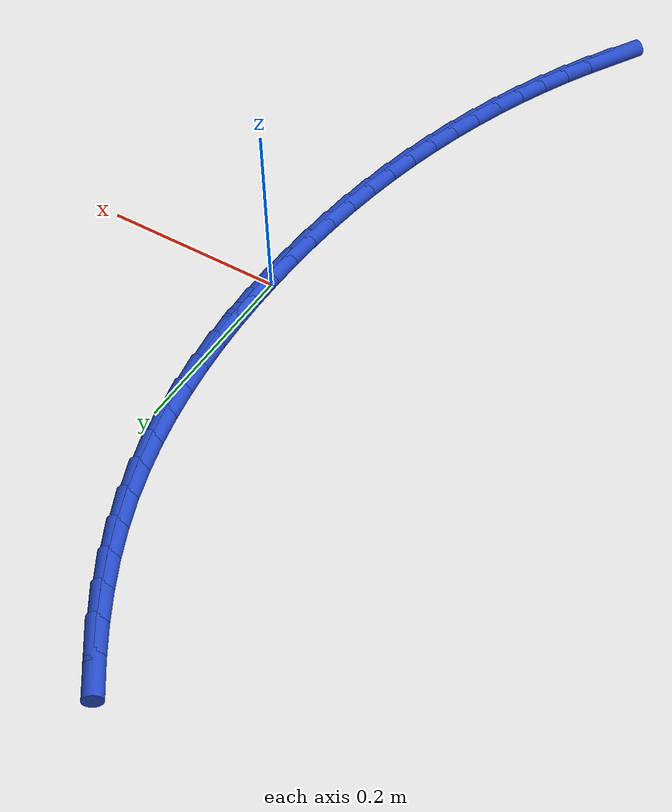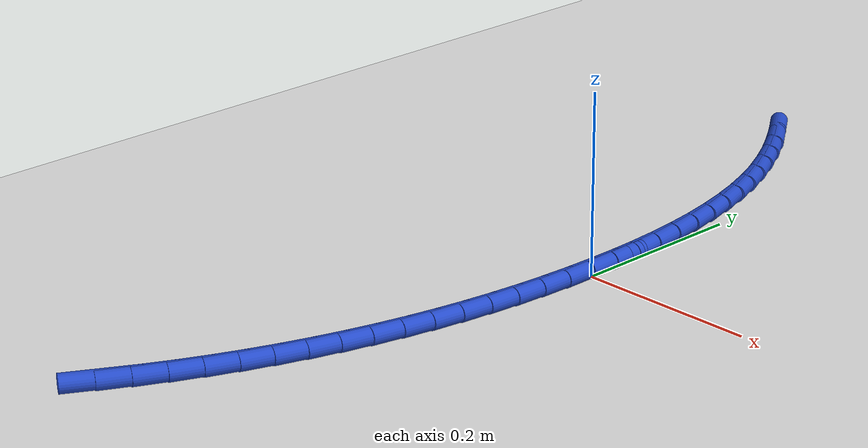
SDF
<sdf version="1.6">
 <world name="default">
  <model name="ground_plane">
   <static>1</static>
   <link name="link">
    <collision name="collision">
     <geometry><plane><normal>0 0 1</normal><size>100 100</size></plane></geometry>
     <surface><friction><ode><mu>100</mu><mu2>50</mu2></ode></friction></surface>
    </collision>
    <visual name="visual">
     <cast_shadows>0</cast_shadows>
     <geometry><plane><normal>0 0 1</normal><size>100 100</size></plane></geometry>
     <material>
      <script><uri>file://media/materials/scripts/gazebo.material</uri><name>Gazebo/WhiteGlow</name></script>
     </material>
    </visual>
   </link>
  </model>
  <model name="line">
   <link name="link_0">
    <pose>3.642919299551295e-17 2.7755575615628914e-17 0.01 0 1.57 1.570233959817323</pose>
    <collision name="collision">
     <geometry><cylinder><radius>0.01</radius><length>0.08</length></cylinder></geometry>
    </collision>
    <visual name="visual">
     <material>
      <script><name>Gazebo/Blue</name><uri>file://media/materials/scripts/gazebo.material</uri></script>
     </material>
     <geometry><cylinder><radius>0.01</radius><length>0.08</length></cylinder></geometry>
    </visual>
   </link>
   <link name="link_1">
    <pose>1.9030973392364642e-05 0.03384084084776214 0.01 0 1.57 -1.5405084652589922</pose>
    <collision name="collision">
     <geometry><cylinder><radius>0.01</radius><length>0.08</length></cylinder></geometry>
    </collision>
    <visual name="visual">
     <material>
      <script><name>Gazebo/Blue</name><uri>file://media/materials/scripts/gazebo.material</uri></script>
     </material>
     <geometry><cylinder><radius>0.01</radius><length>0.08</length></cylinder></geometry>
    </visual>
   </link>
   <link name="link_2">
    <pose>-0.0010073156019435555 0.06771687774421273 0.01 0 1.57 -1.5070896232701272</pose>
    <collision name="collision">
     <geometry><cylinder><radius>0.01</radius><length>0.08</length></cylinder></geometry>
    </collision>
    <visual name="visual">
     <material>
      <script><name>Gazebo/Blue</name><uri>file://media/materials/scripts/gazebo.material</uri></script>
     </material>
     <geometry><cylinder><radius>0.01</radius><length>0.08</length></cylinder></geometry>
    </visual>
   </link>
   <link name="link_3">
    <pose>-0.0031645359947151067 0.10153280436257073 0.01 0 1.57 -1.4709059110682532</pose>
    <collision name="collision">
     <geometry><cylinder><radius>0.01</radius><length>0.08</length></cylinder></geometry>
    </collision>
    <visual name="visual">
     <material>
      <script><name>Gazebo/Blue</name><uri>file://media/materials/scripts/gazebo.material</uri></script>
     </material>
     <geometry><cylinder><radius>0.01</radius><length>0.08</length></cylinder></geometry>
    </visual>
   </link>
   <link name="link_4">
    <pose>-0.006538126473629663 0.1351933143760551 0.01 0 1.57 -1.4317565542293285</pose>
    <collision name="collision">
     <geometry><cylinder><radius>0.01</radius><length>0.08</length></cylinder></geometry>
    </collision>
    <visual name="visual">
     <material>
      <script><name>Gazebo/Blue</name><uri>file://media/materials/scripts/gazebo.material</uri></script>
     </material>
     <geometry><cylinder><radius>0.01</radius><length>0.08</length></cylinder></geometry>
    </visual>
   </link>
   <link name="link_5">
    <pose>-0.011213583307394599 0.16860310145788487 0.01 0 1.57 -1.3894434722486968</pose>
    <collision name="collision">
     <geometry><cylinder><radius>0.01</radius><length>0.08</length></cylinder></geometry>
    </collision>
    <visual name="visual">
     <material>
      <script><name>Gazebo/Blue</name><uri>file://media/materials/scripts/gazebo.material</uri></script>
     </material>
     <geometry><cylinder><radius>0.01</radius><length>0.08</length></cylinder></geometry>
    </visual>
   </link>
   <link name="link_6">
    <pose>-0.017276402764717286 0.20166685928127898 0.01 0 1.57 -1.3437813333467756</pose>
    <collision name="collision">
     <geometry><cylinder><radius>0.01</radius><length>0.08</length></cylinder></geometry>
    </collision>
    <visual name="visual">
     <material>
      <script><name>Gazebo/Blue</name><uri>file://media/materials/scripts/gazebo.material</uri></script>
     </material>
     <geometry><cylinder><radius>0.01</radius><length>0.08</length></cylinder></geometry>
    </visual>
   </link>
   <link name="link_7">
    <pose>-0.024812081114305114 0.2342892815194565 0.01 0 1.57 -1.2946109575999925</pose>
    <collision name="collision">
     <geometry><cylinder><radius>0.01</radius><length>0.08</length></cylinder></geometry>
    </collision>
    <visual name="visual">
     <material>
      <script><name>Gazebo/Blue</name><uri>file://media/materials/scripts/gazebo.material</uri></script>
     </material>
     <geometry><cylinder><radius>0.01</radius><length>0.08</length></cylinder></geometry>
    </visual>
   </link>
   <link name="link_8">
    <pose>-0.03390611462486543 0.2663750618456363 0.01 0 1.57 -1.2418163340584838</pose>
    <collision name="collision">
     <geometry><cylinder><radius>0.01</radius><length>0.08</length></cylinder></geometry>
    </collision>
    <visual name="visual">
     <material>
      <script><name>Gazebo/Blue</name><uri>file://media/materials/scripts/gazebo.material</uri></script>
     </material>
     <geometry><cylinder><radius>0.01</radius><length>0.08</length></cylinder></geometry>
    </visual>
   </link>
   <link name="link_9">
    <pose>-0.04464399956510562 0.2978288939330373 0.01 0 1.57 -1.1856470532846257</pose>
    <collision name="collision">
     <geometry><cylinder><radius>0.01</radius><length>0.08</length></cylinder></geometry>
    </collision>
    <visual name="visual">
     <material>
      <script><name>Gazebo/Blue</name><uri>file://media/materials/scripts/gazebo.material</uri></script>
     </material>
     <geometry><cylinder><radius>0.01</radius><length>0.08</length></cylinder></geometry>
    </visual>
   </link>
   <link name="link_10">
    <pose>-0.057102476147381294 0.3285605294937687 0.01 0 1.57 -1.1300614869389403</pose>
    <collision name="collision">
     <geometry><cylinder><radius>0.01</radius><length>0.08</length></cylinder></geometry>
    </collision>
    <visual name="visual">
     <material>
      <script><name>Gazebo/Blue</name><uri>file://media/materials/scripts/gazebo.material</uri></script>
     </material>
     <geometry><cylinder><radius>0.01</radius><length>0.08</length></cylinder></geometry>
    </visual>
   </link>
   <link name="link_11">
    <pose>-0.07124545831440758 0.35854489566101083 0.01 0 1.57 -1.0779402547479906</pose>
    <collision name="collision">
     <geometry><cylinder><radius>0.01</radius><length>0.08</length></cylinder></geometry>
    </collision>
    <visual name="visual">
     <material>
      <script><name>Gazebo/Blue</name><uri>file://media/materials/scripts/gazebo.material</uri></script>
     </material>
     <geometry><cylinder><radius>0.01</radius><length>0.08</length></cylinder></geometry>
    </visual>
   </link>
   <link name="link_12">
    <pose>-0.08695846034180377 0.3878022080573279 0.01 0 1.57 -1.0294471504644</pose>
    <collision name="collision">
     <geometry><cylinder><radius>0.01</radius><length>0.08</length></cylinder></geometry>
    </collision>
    <visual name="visual">
     <material>
      <script><name>Gazebo/Blue</name><uri>file://media/materials/scripts/gazebo.material</uri></script>
     </material>
     <geometry><cylinder><radius>0.01</radius><length>0.08</length></cylinder></geometry>
    </visual>
   </link>
   <link name="link_13">
    <pose>-0.10412541307795481 0.4163535969906417 0.01 0 1.57 -0.9846069180359244</pose>
    <collision name="collision">
     <geometry><cylinder><radius>0.01</radius><length>0.08</length></cylinder></geometry>
    </collision>
    <visual name="visual">
     <material>
      <script><name>Gazebo/Blue</name><uri>file://media/materials/scripts/gazebo.material</uri></script>
     </material>
     <geometry><cylinder><radius>0.01</radius><length>0.08</length></cylinder></geometry>
    </visual>
   </link>
   <link name="link_14">
    <pose>-0.12263024737124555 0.44422019276887326 0.01 0 1.57 -0.9433792235251794</pose>
    <collision name="collision">
     <geometry><cylinder><radius>0.01</radius><length>0.08</length></cylinder></geometry>
    </collision>
    <visual name="visual">
     <material>
      <script><name>Gazebo/Blue</name><uri>file://media/materials/scripts/gazebo.material</uri></script>
     </material>
     <geometry><cylinder><radius>0.01</radius><length>0.08</length></cylinder></geometry>
    </visual>
   </link>
   <link name="link_184">
    <pose>-0.14021513885076922 -0.5127004419300742 0.01 0 1.57 1.0487280676079844</pose>
    <collision name="collision">
     <geometry><cylinder><radius>0.01</radius><length>0.08</length></cylinder></geometry>
    </collision>
    <visual name="visual">
     <material>
      <script><name>Gazebo/Blue</name><uri>file://media/materials/scripts/gazebo.material</uri></script>
     </material>
     <geometry><cylinder><radius>0.01</radius><length>0.08</length></cylinder></geometry>
    </visual>
   </link>
   <link name="link_185">
    <pose>-0.12347913800068554 -0.4836101068324142 0.01 0 1.57 1.085785911774184</pose>
    <collision name="collision">
     <geometry><cylinder><radius>0.01</radius><length>0.08</length></cylinder></geometry>
    </collision>
    <visual name="visual">
     <material>
      <script><name>Gazebo/Blue</name><uri>file://media/materials/scripts/gazebo.material</uri></script>
     </material>
     <geometry><cylinder><radius>0.01</radius><length>0.08</length></cylinder></geometry>
    </visual>
   </link>
   <link name="link_186">
    <pose>-0.10778673992945685 -0.45383303264455677 0.01 0 1.57 1.121838150717926</pose>
    <collision name="collision">
     <geometry><cylinder><radius>0.01</radius><length>0.08</length></cylinder></geometry>
    </collision>
    <visual name="visual">
     <material>
      <script><name>Gazebo/Blue</name><uri>file://media/materials/scripts/gazebo.material</uri></script>
     </material>
     <geometry><cylinder><radius>0.01</radius><length>0.08</length></cylinder></geometry>
    </visual>
   </link>
   <link name="link_187">
    <pose>-0.09314836157656912 -0.423448503785356 0.01 0 1.57 1.1570389637711036</pose>
    <collision name="collision">
     <geometry><cylinder><radius>0.01</radius><length>0.08</length></cylinder></geometry>
    </collision>
    <visual name="visual">
     <material>
      <script><name>Gazebo/Blue</name><uri>file://media/materials/scripts/gazebo.material</uri></script>
     </material>
     <geometry><cylinder><radius>0.01</radius><length>0.08</length></cylinder></geometry>
    </visual>
   </link>
   <link name="link_188">
    <pose>-0.07957441988150833 -0.3925358046736651 0.01 0 1.57 1.1915425439665415</pose>
    <collision name="collision">
     <geometry><cylinder><radius>0.01</radius><length>0.08</length></cylinder></geometry>
    </collision>
    <visual name="visual">
     <material>
      <script><name>Gazebo/Blue</name><uri>file://media/materials/scripts/gazebo.material</uri></script>
     </material>
     <geometry><cylinder><radius>0.01</radius><length>0.08</length></cylinder></geometry>
    </visual>
   </link>
   <link name="link_189">
    <pose>-0.06707533178376045 -0.36117421972833785 0.01 0 1.57 1.2255032876832923</pose>
    <collision name="collision">
     <geometry><cylinder><radius>0.01</radius><length>0.08</length></cylinder></geometry>
    </collision>
    <visual name="visual">
     <material>
      <script><name>Gazebo/Blue</name><uri>file://media/materials/scripts/gazebo.material</uri></script>
     </material>
     <geometry><cylinder><radius>0.01</radius><length>0.08</length></cylinder></geometry>
    </visual>
   </link>
   <link name="link_190">
    <pose>-0.05566151422281146 -0.329443033368228 0.01 0 1.57 1.2590754764508458</pose>
    <collision name="collision">
     <geometry><cylinder><radius>0.01</radius><length>0.08</length></cylinder></geometry>
    </collision>
    <visual name="visual">
     <material>
      <script><name>Gazebo/Blue</name><uri>file://media/materials/scripts/gazebo.material</uri></script>
     </material>
     <geometry><cylinder><radius>0.01</radius><length>0.08</length></cylinder></geometry>
    </visual>
   </link>
   <link name="link_191">
    <pose>-0.04534318275808585 -0.2974209987934399 0.01 0 1.57 1.2923437972725997</pose>
    <collision name="collision">
     <geometry><cylinder><radius>0.01</radius><length>0.08</length></cylinder></geometry>
    </collision>
    <visual name="visual">
     <material>
      <script><name>Gazebo/Blue</name><uri>file://media/materials/scripts/gazebo.material</uri></script>
     </material>
     <geometry><cylinder><radius>0.01</radius><length>0.08</length></cylinder></geometry>
    </visual>
   </link>
   <link name="link_192">
    <pose>-0.036120582089952634 -0.2651605671598926 0.01 0 1.57 1.3252406824681429</pose>
    <collision name="collision">
     <geometry><cylinder><radius>0.01</radius><length>0.08</length></cylinder></geometry>
    </collision>
    <visual name="visual">
     <material>
      <script><name>Gazebo/Blue</name><uri>file://media/materials/scripts/gazebo.material</uri></script>
     </material>
     <geometry><cylinder><radius>0.01</radius><length>0.08</length></cylinder></geometry>
    </visual>
   </link>
   <link name="link_193">
    <pose>-0.027979607689070006 -0.23267633791265516 0.01 0 1.57 1.3577094953005533</pose>
    <collision name="collision">
     <geometry><cylinder><radius>0.01</radius><length>0.08</length></cylinder></geometry>
    </collision>
    <visual name="visual">
     <material>
      <script><name>Gazebo/Blue</name><uri>file://media/materials/scripts/gazebo.material</uri></script>
     </material>
     <geometry><cylinder><radius>0.01</radius><length>0.08</length></cylinder></geometry>
    </visual>
   </link>
   <link name="link_194">
    <pose>-0.020905041432034453 -0.19997997295650588 0.01 0 1.57 1.3897033351678831</pose>
    <collision name="collision">
     <geometry><cylinder><radius>0.01</radius><length>0.08</length></cylinder></geometry>
    </collision>
    <visual name="visual">
     <material>
      <script><name>Gazebo/Blue</name><uri>file://media/materials/scripts/gazebo.material</uri></script>
     </material>
     <geometry><cylinder><radius>0.01</radius><length>0.08</length></cylinder></geometry>
    </visual>
   </link>
   <link name="link_195">
    <pose>-0.014881665195442213 -0.16708313419622214 0.01 0 1.57 1.4211805735006857</pose>
    <collision name="collision">
     <geometry><cylinder><radius>0.01</radius><length>0.08</length></cylinder></geometry>
    </collision>
    <visual name="visual">
     <material>
      <script><name>Gazebo/Blue</name><uri>file://media/materials/scripts/gazebo.material</uri></script>
     </material>
     <geometry><cylinder><radius>0.01</radius><length>0.08</length></cylinder></geometry>
    </visual>
   </link>
   <link name="link_196">
    <pose>-0.009894260855889563 -0.1339974835365816 0.01 0 1.57 1.452104993963607</pose>
    <collision name="collision">
     <geometry><cylinder><radius>0.01</radius><length>0.08</length></cylinder></geometry>
    </collision>
    <visual name="visual">
     <material>
      <script><name>Gazebo/Blue</name><uri>file://media/materials/scripts/gazebo.material</uri></script>
     </material>
     <geometry><cylinder><radius>0.01</radius><length>0.08</length></cylinder></geometry>
    </visual>
   </link>
   <link name="link_197">
    <pose>-0.005927610289972756 -0.10073468288236162 0.01 0 1.57 1.4824458195242123</pose>
    <collision name="collision">
     <geometry><cylinder><radius>0.01</radius><length>0.08</length></cylinder></geometry>
    </collision>
    <visual name="visual">
     <material>
      <script><name>Gazebo/Blue</name><uri>file://media/materials/scripts/gazebo.material</uri></script>
     </material>
     <geometry><cylinder><radius>0.01</radius><length>0.08</length></cylinder></geometry>
    </visual>
   </link>
   <link name="link_198">
    <pose>-0.0029664953742880446 -0.06730639413833969 0.01 0 1.57 1.512177637745657</pose>
    <collision name="collision">
     <geometry><cylinder><radius>0.01</radius><length>0.08</length></cylinder></geometry>
    </collision>
    <visual name="visual">
     <material>
      <script><name>Gazebo/Blue</name><uri>file://media/materials/scripts/gazebo.material</uri></script>
     </material>
     <geometry><cylinder><radius>0.01</radius><length>0.08</length></cylinder></geometry>
    </visual>
   </link>
   <link name="link_199">
    <pose>-0.0009956979854316948 -0.03372427920929333 0.01 0 1.57 1.5412802380467396</pose>
    <collision name="collision">
     <geometry><cylinder><radius>0.01</radius><length>0.08</length></cylinder></geometry>
    </collision>
    <visual name="visual">
     <material>
      <script><name>Gazebo/Blue</name><uri>file://media/materials/scripts/gazebo.material</uri></script>
     </material>
     <geometry><cylinder><radius>0.01</radius><length>0.08</length></cylinder></geometry>
    </visual>
   </link>
   <link name="link_200">
    <pose>3.2959746043559335e-17 -5.551115123125783e-17 0.01 0 1.57 1.5697383760307355</pose>
    <collision name="collision">
     <geometry><cylinder><radius>0.01</radius><length>0.08</length></cylinder></geometry>
    </collision>
    <visual name="visual">
     <material>
      <script><name>Gazebo/Blue</name><uri>file://media/materials/scripts/gazebo.material</uri></script>
     </material>
     <geometry><cylinder><radius>0.01</radius><length>0.08</length></cylinder></geometry>
    </visual>
   </link>
   <link name="link_201">
    <pose>3.581670541087569e-05 0.03385478158476345 0.01 0 1.57 1.5697383760307355</pose>
    <collision name="collision">
     <geometry><cylinder><radius>0.01</radius><length>0.08</length></cylinder></geometry>
    </collision>
    <visual name="visual">
     <material>
      <script><name>Gazebo/Blue</name><uri>file://media/materials/scripts/gazebo.material</uri></script>
     </material>
     <geometry><cylinder><radius>0.01</radius><length>0.08</length></cylinder></geometry>
    </visual>
   </link>
  </model>
 </world>
</sdf>
